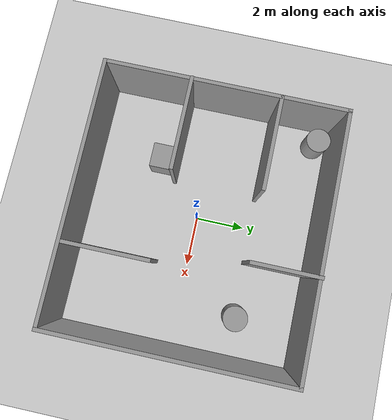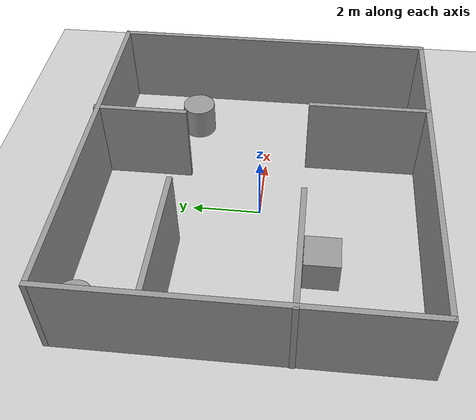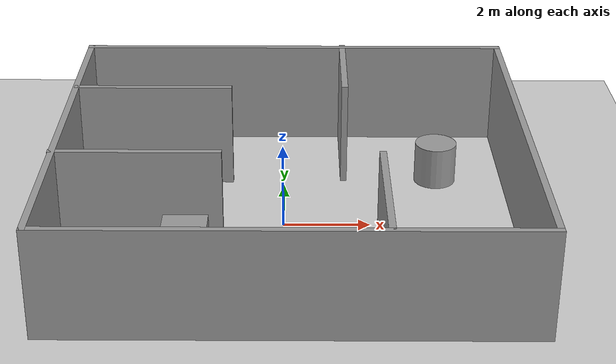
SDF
<sdf version="1.6">
 <world name="default">
  <light name="sun" type="directional">
   <pose>0 0 10 0 -0 0</pose>
   <diffuse>0.8 0.8 0.8 1</diffuse>
   <specular>0.2 0.2 0.2 1</specular>
   <attenuation>
    <range>1000</range>
    <constant>0.9</constant>
    <linear>0.01</linear>
    <quadratic>0.001</quadratic>
   </attenuation>
   <direction>-0.5 0.1 -0.9</direction>
  </light>
  <model name="ground_plane">
   <static>1</static>
   <link name="link">
    <collision name="collision">
     <geometry><plane><normal>0 0 1</normal><size>100 100</size></plane></geometry>
     <surface><friction><ode><mu>100</mu><mu2>50</mu2></ode></friction></surface>
    </collision>
    <visual name="visual">
     <cast_shadows>0</cast_shadows>
     <geometry><plane><normal>0 0 1</normal><size>100 100</size></plane></geometry>
     <material>
      <script><uri>file://media/materials/scripts/gazebo.material</uri><name>Gazebo/Grey</name></script>
     </material>
    </visual>
   </link>
  </model>
  <gravity>0 0 -9.8</gravity>
  <magnetic_field>6e-06 2.3e-05 -4.2e-05</magnetic_field>
  <atmosphere type="adiabatic"/>
  <physics name="default_physics" default="0" type="ode">
   <max_step_size>0.001</max_step_size>
   <real_time_factor>1</real_time_factor>
   <real_time_update_rate>1000</real_time_update_rate>
  </physics>
  <scene><ambient>0.4 0.4 0.4 1</ambient><background>0.7 0.7 0.7 1</background><shadows>1</shadows></scene>
  <spherical_coordinates>
   <surface_model>EARTH_WGS84</surface_model>
   <latitude_deg>0</latitude_deg>
   <longitude_deg>0</longitude_deg>
   <elevation>0</elevation>
   <heading_deg>0</heading_deg>
  </spherical_coordinates>
  <model name="world_ped">
   <pose>0.20544 0.119323 0 0 -0 0</pose>
   <link name="Wall_12">
    <collision name="Wall_12_Collision">
     <geometry><box><size>3.75 0.15 2.5</size></box></geometry>
     <pose>0 0 1.25 0 -0 0</pose>
    </collision>
    <visual name="Wall_12_Visual">
     <pose>0 0 1.25 0 -0 0</pose>
     <geometry><box><size>3.75 0.15 2.5</size></box></geometry>
     <material>
      <script><uri>file://media/materials/scripts/gazebo.material</uri><name>Gazebo/Grey</name></script>
      <ambient>1 1 1 1</ambient>
     </material>
     <meta><layer>0</layer></meta>
    </visual>
    <pose>-3.38437 -1.3936 0 0 -0 0</pose>
   </link>
   <link name="Wall_15">
    <collision name="Wall_15_Collision">
     <geometry><box><size>3.5 0.15 2.5</size></box></geometry>
     <pose>0 0 1.25 0 -0 0</pose>
    </collision>
    <visual name="Wall_15_Visual">
     <pose>0 0 1.25 0 -0 0</pose>
     <geometry><box><size>3.5 0.15 2.5</size></box></geometry>
     <material>
      <script><uri>file://media/materials/scripts/gazebo.material</uri><name>Gazebo/Grey</name></script>
      <ambient>1 1 1 1</ambient>
     </material>
     <meta><layer>0</layer></meta>
    </visual>
    <pose>1.95777 -3.11015 0 0 -0 1.5708</pose>
   </link>
   <link name="Wall_17">
    <collision name="Wall_17_Collision">
     <geometry><box><size>2.75 0.15 2.5</size></box></geometry>
     <pose>0 0 1.25 0 -0 0</pose>
    </collision>
    <visual name="Wall_17_Visual">
     <pose>0 0 1.25 0 -0 0</pose>
     <geometry><box><size>2.75 0.15 2.5</size></box></geometry>
     <material>
      <script><uri>file://media/materials/scripts/gazebo.material</uri><name>Gazebo/Grey</name></script>
      <ambient>1 1 1 1</ambient>
     </material>
     <meta><layer>0</layer></meta>
    </visual>
    <pose>1.2406 3.52397 0 0 -0 -1.5708</pose>
   </link>
   <link name="Wall_4">
    <collision name="Wall_4_Collision">
     <geometry><box><size>9.75 0.15 2.5</size></box></geometry>
     <pose>0 0 1.25 0 -0 0</pose>
    </collision>
    <visual name="Wall_4_Visual">
     <pose>0 0 1.25 0 -0 0</pose>
     <geometry><box><size>9.75 0.15 2.5</size></box></geometry>
     <material>
      <script><uri>file://media/materials/scripts/gazebo.material</uri><name>Gazebo/Grey</name></script>
      <ambient>1 1 1 1</ambient>
     </material>
     <meta><layer>0</layer></meta>
    </visual>
    <pose>-5.16563 -0.023966 0 0 -0 -1.5708</pose>
   </link>
   <link name="Wall_5">
    <collision name="Wall_5_Collision">
     <geometry><box><size>10.5 0.15 2.5</size></box></geometry>
     <pose>0 0 1.25 0 -0 0</pose>
    </collision>
    <visual name="Wall_5_Visual">
     <pose>0 0 1.25 0 -0 0</pose>
     <geometry><box><size>10.5 0.15 2.5</size></box></geometry>
     <material>
      <script><uri>file://media/materials/scripts/gazebo.material</uri><name>Gazebo/Grey</name></script>
      <ambient>1 1 1 1</ambient>
     </material>
     <meta><layer>0</layer></meta>
    </visual>
    <pose>0.009368 -4.82397 0 0 -0 0</pose>
   </link>
   <link name="Wall_6">
    <collision name="Wall_6_Collision">
     <geometry><box><size>9.75 0.15 2.5</size></box></geometry>
     <pose>0 0 1.25 0 -0 0</pose>
    </collision>
    <visual name="Wall_6_Visual">
     <pose>0 0 1.25 0 -0 0</pose>
     <geometry><box><size>9.75 0.15 2.5</size></box></geometry>
     <material>
      <script><uri>file://media/materials/scripts/gazebo.material</uri><name>Gazebo/Grey</name></script>
      <ambient>1 1 1 1</ambient>
     </material>
     <meta><layer>0</layer></meta>
    </visual>
    <pose>5.18437 -0.023966 0 0 -0 1.5708</pose>
   </link>
   <link name="Wall_7">
    <collision name="Wall_7_Collision">
     <geometry><box><size>10.5 0.15 2.5</size></box></geometry>
     <pose>0 0 1.25 0 -0 0</pose>
    </collision>
    <visual name="Wall_7_Visual">
     <pose>0 0 1.25 0 -0 0</pose>
     <geometry><box><size>10.5 0.15 2.5</size></box></geometry>
     <material>
      <script><uri>file://media/materials/scripts/gazebo.material</uri><name>Gazebo/Grey</name></script>
      <ambient>1 1 1 1</ambient>
     </material>
     <meta><layer>0</layer></meta>
    </visual>
    <pose>0.009368 4.77603 0 0 -0 3.14159</pose>
   </link>
   <link name="Wall_9">
    <collision name="Wall_9_Collision">
     <geometry><box><size>3.75 0.15 2.5</size></box></geometry>
     <pose>0 0 1.25 0 -0 0</pose>
    </collision>
    <visual name="Wall_9_Visual">
     <pose>0 0 1.25 0 -0 0</pose>
     <geometry><box><size>3.75 0.15 2.5</size></box></geometry>
     <material>
      <script><uri>file://media/materials/scripts/gazebo.material</uri><name>Gazebo/Grey</name></script>
      <ambient>1 1 1 1</ambient>
     </material>
     <meta><layer>0</layer></meta>
    </visual>
    <pose>-3.33045 2.13763 0 0 -0 0</pose>
   </link>
   <static>1</static>
  </model>
  <model name="unit_box">
   <pose>-2.12385 -1.87144 0.499995 0 1e-05 0</pose>
   <link name="link">
    <inertial>
     <mass>1</mass>
     <inertia>
      <ixx>0.166667</ixx>
      <ixy>0</ixy>
      <ixz>0</ixz>
      <iyy>0.166667</iyy>
      <iyz>0</iyz>
      <izz>0.166667</izz>
     </inertia>
    </inertial>
    <collision name="collision"><geometry><box><size>1 1 1</size></box></geometry></collision>
    <visual name="visual">
     <geometry><box><size>1 1 1</size></box></geometry>
     <material>
      <script><name>Gazebo/Grey</name><uri>file://media/materials/scripts/gazebo.material</uri></script>
     </material>
    </visual>
   </link>
  </model>
  <model name="unit_cylinder">
   <pose>3.6871 2.34997 0.499993 -3e-06 -4e-06 -0</pose>
   <link name="link">
    <inertial>
     <mass>1</mass>
     <inertia><ixx>0.145833</ixx><ixy>0</ixy><ixz>0</ixz><iyy>0.145833</iyy><iyz>0</iyz><izz>0.125</izz></inertia>
    </inertial>
    <collision name="collision">
     <geometry><cylinder><radius>0.5</radius><length>1</length></cylinder></geometry>
    </collision>
    <visual name="visual">
     <geometry><cylinder><radius>0.5</radius><length>1</length></cylinder></geometry>
     <material>
      <script><name>Gazebo/Grey</name><uri>file://media/materials/scripts/gazebo.material</uri></script>
     </material>
    </visual>
   </link>
  </model>
  <model name="unit_cylinder_0">
   <pose>-4.15603 4.28181 0.499997 3e-06 4e-06 -0</pose>
   <link name="link">
    <inertial>
     <mass>1</mass>
     <inertia><ixx>0.145833</ixx><ixy>0</ixy><ixz>0</ixz><iyy>0.145833</iyy><iyz>0</iyz><izz>0.125</izz></inertia>
    </inertial>
    <collision name="collision">
     <geometry><cylinder><radius>0.5</radius><length>1</length></cylinder></geometry>
    </collision>
    <visual name="visual">
     <geometry><cylinder><radius>0.5</radius><length>1</length></cylinder></geometry>
     <material>
      <script><name>Gazebo/Grey</name><uri>file://media/materials/scripts/gazebo.material</uri></script>
     </material>
    </visual>
   </link>
  </model>
 </world>
</sdf>
